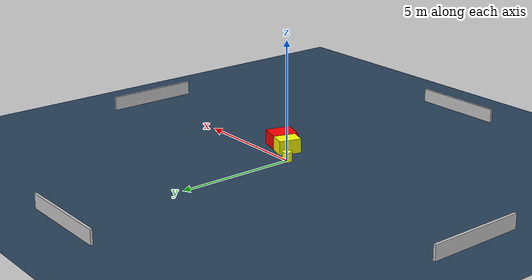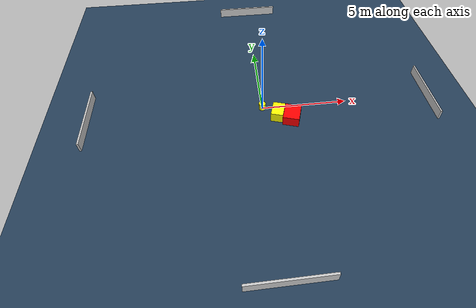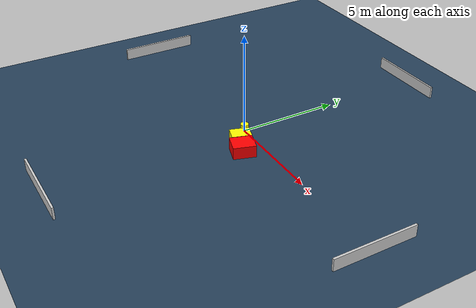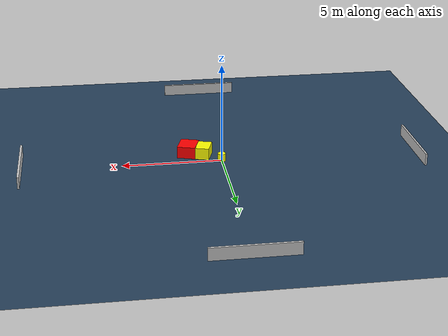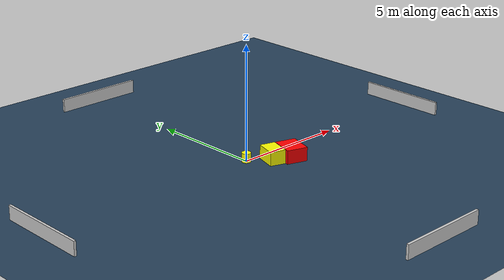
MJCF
<?xml version="1.0" ?>
<mujoco model="generated_environment">
  <option timestep="0.01" integrator="RK4" cone="elliptic"/>
  <default>
    <geom density="1"/>
  </default>
  <asset>
    <texture builtin="gradient" height="3072" name="skybox" rgb1="0.3 0.5 0.7" rgb2="0 0 0" type="skybox" width="512"/>
    <texture builtin="checker" height="300" name="groundplane" rgb1="0.2 0.3 0.4" rgb2="0.1 0.2 0.3" type="2d" width="300"/>
    <material name="groundplane" reflectance="0.2" texrepeat="5 5" texture="groundplane"/>
  </asset>
  <worldbody>
    <light dir="0 0 -1" directional="true" pos="0 0 1.5"/>
    <geom condim="3" friction="0.5 0.005 0.001" material="groundplane" name="floor" pos="0 0 0" size="0 0 0.05" type="plane"/>
    <body name="walls">
      <geom name="wall_1" condim="4" pos="-10.0 0.0 0.3" rgba="0.800000011920929 0.800000011920929 0.800000011920929 1.0" size="0.05 2.0 0.3" type="box"/>
      <geom name="wall_2" condim="4" pos="10.0 0.0 0.3" rgba="0.800000011920929 0.800000011920929 0.800000011920929 1.0" size="0.05 2.0 0.3" type="box"/>
      <geom name="wall_3" condim="4" pos="0.0 -10.0 0.3" rgba="0.800000011920929 0.800000011920929 0.800000011920929 1.0" size="2.0 0.05 0.3" type="box"/>
      <geom name="wall_4" condim="4" pos="0.0 10.0 0.3" rgba="0.800000011920929 0.800000011920929 0.800000011920929 1.0" size="2.0 0.05 0.3" type="box"/>
    </body>
    <body name="robot">
      <joint name="joint_x" type="slide" pos="0 0 0" axis="1 0 0"/>
      <joint name="joint_y" type="slide" pos="0 0 0" axis="0 1 0"/>
      <geom name="robot" type="cylinder" pos="0.0 0.0 0.2" size="0.2 0.2 0.0" mass="5.0" friction="1.0 0.005 0.0001" condim="4" rgba="1.0 1.0 0.0 1.0"/>
    </body>
    <body name="obstacle_1_movable">
      <geom name="obstacle_1_movable" condim="4" pos="0.8329039244640244 -0.692819985420927 0.3" euler="0 0 72.83803299327995" friction="0.0 0.005 0.001" rgba="1.0 1.0 0.0 1.0" size="0.4749086711911923 0.3456142395512334 0.3" type="box" mass="0.1"/>
      <joint type="free"/>
    </body>
    <body name="obstacle_2_static">
      <geom name="obstacle_2_static" condim="4" pos="1.5941797743716084 -1.0082103820657924 0.3" euler="0 0 162.69222277289975" friction="0.0 0.005 0.001" rgba="1.0 0.0 0.0 1.0" size="0.46126115716414684 0.5427350449113506 0.3" type="box"/>
    </body>
  </worldbody>
  <actuator>
    <motor name="actuator_x" joint="joint_x" gear="1" ctrlrange="-1 1"/>
    <motor name="actuator_y" joint="joint_y" gear="1" ctrlrange="-1 1"/>
  </actuator>
</mujoco>
